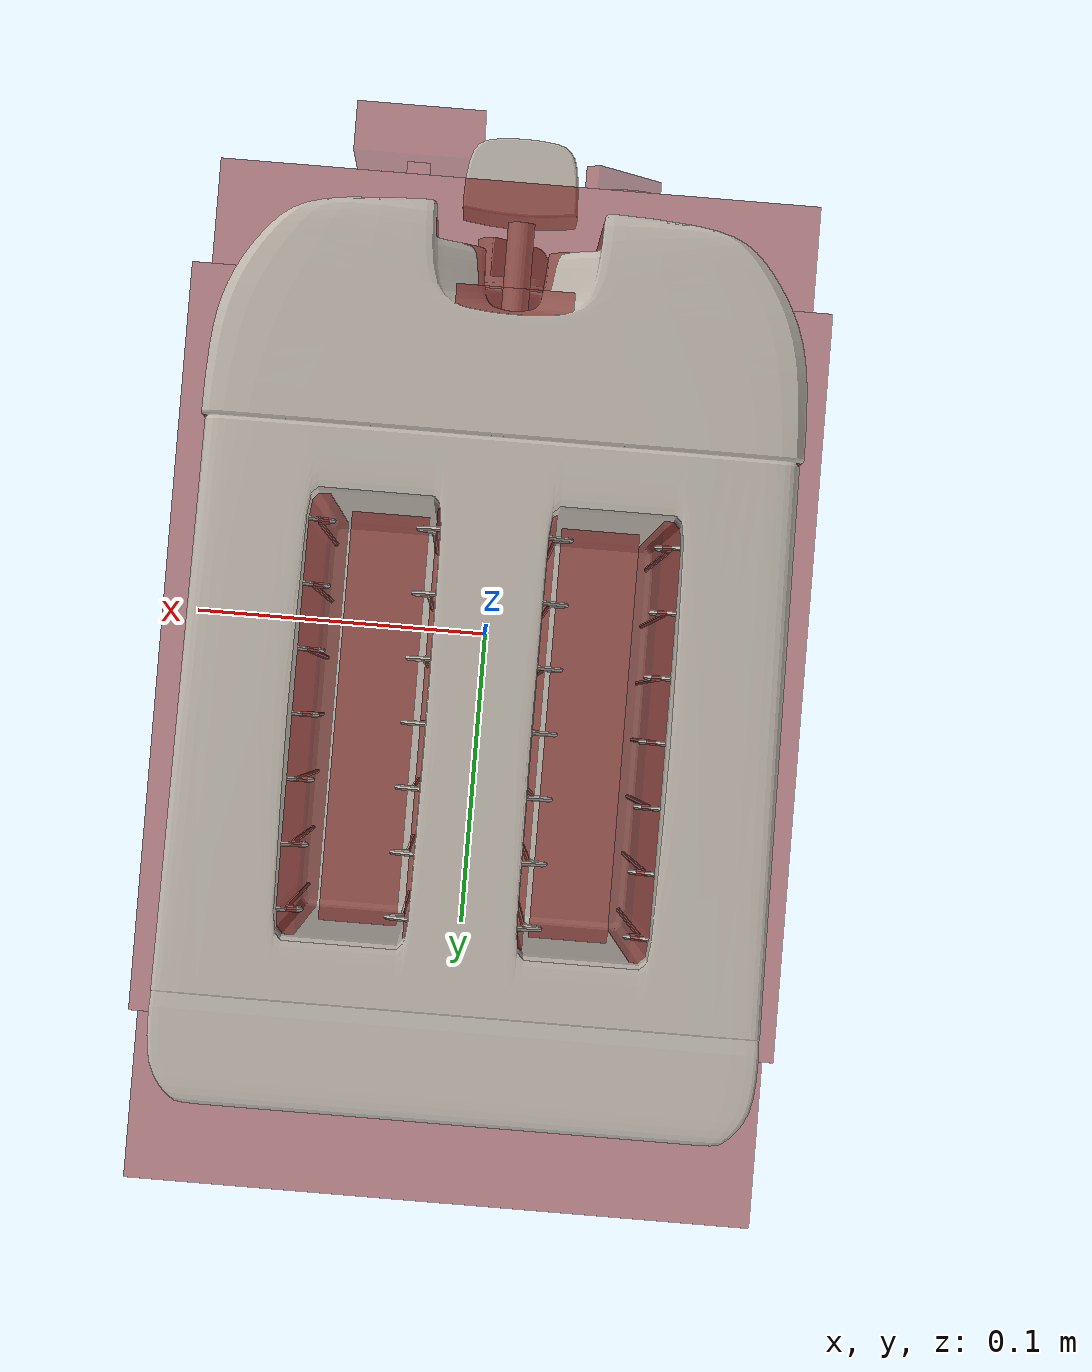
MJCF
<?xml version='1.0' encoding='UTF-8'?>
<mujoco model="model">
  <option timestep="0.002" gravity="0.0 0.0 -9.81"/>
  <compiler angle="radian"/>
  <asset>
    <mesh file="visuals/button_cancel.obj" name="button_cancel_vis"/>
    <mesh file="visuals/knob_doneness.obj" name="knob_doneness_vis"/>
    <mesh file="visuals/lever.obj" name="lever_vis"/>
    <mesh file="visuals/Body001.obj" name="Body001_vis"/>
    <mesh file="visuals/Body002.obj" name="Body002_vis"/>
    <texture file="visuals/T_BC001.png" name="Body001_material" type="2d"/>
    <material name="Body001_material" rgba="1 1 1 1.0" texture="Body001_material" shininess="0.141421377658844" specular="0.5"/>
    <texture file="visuals/T_BC001.png" name="button_cancel_material" type="2d"/>
    <material name="button_cancel_material" rgba="1 1 1 1.0" texture="button_cancel_material" shininess="0.141421377658844" specular="0.3103448502657381"/>
    <texture file="visuals/T_BC001.png" name="knob_doneness_material" type="2d"/>
    <material name="knob_doneness_material" rgba="1 1 1 1.0" texture="knob_doneness_material" shininess="0.141421377658844" specular="0.3103448502657381"/>
    <texture file="visuals/T_BC001.png" name="lever_material" type="2d"/>
    <material name="lever_material" rgba="1 1 1 1.0" texture="lever_material" shininess="0.141421377658844" specular="0.3103448502657381"/>
    <texture file="visuals/T_BC001.png" name="Body002_material" type="2d"/>
    <material name="Body002_material" rgba="1 1 1 1.0" texture="Body002_material" shininess="0.141421377658844" specular="1"/>
  </asset>
  <default>
    <default class="visual">
      <geom conaffinity="0" contype="0" group="1" type="mesh"/>
    </default>
    <default class="collision_1">
      <geom group="0" rgba="0.5 0 0 0.5" solref="0.004 1" solimp="0.998 0.998 0.001"/>
    </default>
    <default class="collision_2">
      <geom group="0" rgba="0.5 0 0 0.5" solref="0.004 1" solimp="0.998 0.998 0.001"/>
    </default>
    <default class="collision_3">
      <geom group="0" rgba="0.5 0 0 0.5" solref="0.004 1" solimp="0.998 0.998 0.001"/>
    </default>
    <default class="collision_4">
      <geom group="0" rgba="0.5 0 0 0.5" solref="0.004 1" solimp="0.998 0.998 0.001"/>
    </default>
    <default class="collision_5">
      <geom group="0" rgba="0.5 0 0 0.5" solref="0.004 1" solimp="0.998 0.998 0.001"/>
    </default>
    <default class="spawn">
      <geom group="0" rgba="1 1 1 0.5" contype="0" conaffinity="0"/>
      <site group="0" rgba="1 1 1 0.5"/>
    </default>
    <default class="region">
      <geom group="1" conaffinity="0" contype="0" rgba="0 1 0 0" mass="0"/>
    </default>
  </default>
  <worldbody>
    <body>
      <body name="object">
        <geom mesh="Body001_vis" type="mesh" solimp="0.998 0.998 0.001" solref="0.001 1" friction="0.95 0.3 0.1" class="visual" material="Body001_material"/>
        <geom type="box" pos="-0.07488800585269928 0.011524900794029236 -0.005815255921334028" size="0.023146148771047592 0.11509587615728378 0.11965861916542053" quat="1.0 0.0 0.0 0.0" class="collision_1"/>
        <geom type="box" pos="0.07529187947511673 0.011524900794029236 -0.005815255921334028" size="0.024228282272815704 0.11509574949741364 0.11965849250555038" quat="1.0 0.0 0.0 0.0" class="collision_1"/>
        <geom type="box" pos="0.0010322683956474066 0.15098883211612701 -0.005815255921334028" size="0.0956549271941185 0.02635013684630394 0.11965836584568024" quat="1.0 0.0 0.0 0.0" class="collision_1"/>
        <geom type="box" pos="0.0007400063914246857 -0.11958521604537964 -0.011359469033777714" size="0.09385614842176437 0.01879402995109558 0.11411401629447937" quat="1.0 0.0 0.0 0.0" class="collision_1"/>
        <geom type="box" pos="0.0010322683956474066 0.015418075025081635 -0.07468372583389282" size="0.0956549271941185 0.1551324874162674 0.05078919604420662" quat="1.0 0.0 0.0 0.0" class="collision_1"/>
        <geom type="box" pos="-0.00039106234908103943 0.011524900794029236 -0.005815255921334028" size="0.018305618315935135 0.11509524285793304 0.1196579784154892" quat="1.0 0.0 0.0 0.0" class="collision_1"/>
        <geom type="box" pos="0.0010322683956474066 -0.14465896785259247 -0.09889950603246689" size="0.0956549271941185 0.007975291460752487 0.026573054492473602" quat="1.0 0.0 0.0 0.0" class="collision_1"/>
        <body name="button_cancel">
          <joint axis="0.0 0.9951477646827698 -0.09839220345020294" pos="-0.036711499094963074 -0.14928001165390015 0.026580773293972015" limited="true" name="button_cancel_joint" range="0.0 0.003" type="slide" damping="1" frictionloss="1" armature=".01" stiffness="4" springref="-1"/>
          <geom mesh="button_cancel_vis" type="mesh" solimp="0.998 0.998 0.001" solref="0.001 1" friction="0.95 0.3 0.1" class="visual" material="button_cancel_material"/>
          <geom class="collision_2" type="cylinder" pos="-0.036685675382614136 -0.15081441402435303 0.026710618287324905" size="0.008471447043120861 0.0020481699611991644" quat="0.7366375923156738 0.6762877106666565 0.0 0.0" name="button_cancel_main"/>
        </body>
        <body name="knob_doneness">
          <joint axis="0.0 1.0 0.0" pos="-0.03651811555027962 -0.15102431178092957 -0.023310568183660507" limited="true" name="knob_doneness_joint" range="0.0 4.71238898038469" type="hinge" damping="0.05" frictionloss="0.75" armature="1"/>
          <geom mesh="knob_doneness_vis" type="mesh" solimp="0.998 0.998 0.001" solref="0.001 1" friction="0.95 0.3 0.1" class="visual" material="knob_doneness_material"/>
          <geom type="cylinder" pos="-0.03673221543431282 -0.15320010483264923 -0.023907829076051712" size="0.018186276778578758 0.0028125473763793707" quat="0.7071068286895752 0.7071067690849304 0.0 0.0" class="collision_3" friction="100 0.5 0.01"/>
          <geom class="collision_3" type="box" pos="-0.03650251403450966 -0.16254673898220062 -0.02354789897799492" size="0.015994589775800705 0.006491436157375574 0.0031952860299497843" quat="0.9304175972938538 0.0 -0.36650121212005615 0.0" name="knob_doneness_main" friction="100 0.5 0.01"/>
        </body>
        <body name="lever">
          <joint axis="0.0 0.0 -1.0" pos="0.03511293604969978 -0.15722987055778503 0.03736644238233566" limited="true" name="lever_joint" range="0.0 0.06" type="slide" damping="1" frictionloss="1" armature=".1" stiffness="3.4" springref="-0.5"/>
          <geom class="region" name="reg_slotR" type="box" pos="0.034988900646567345 0.012009669095277786 0.12483536452054977" size="0.014185659423470498 0.10737042298913002 0.07599996572732926"/>
          <geom class="region" name="reg_slotL" type="box" pos="-0.034976364113390446 0.012009669095277786 0.12483536452054977" size="0.015136879704892636 0.10737042298913002 0.07599996572732926"/>
          <geom mesh="lever_vis" type="mesh" solimp="0.998 0.998 0.001" solref="0.001 1" friction="0.95 0.3 0.1" class="visual" material="lever_material"/>
          <geom class="collision_4" type="box" pos="0.03525107353925705 -0.16262122988700867 0.03736644238233566" size="0.021307790651917458 0.008166993968188763 0.016228368505835533" quat="1.0 0.0 0.0 0.0" name="lever_handle"/>
          <geom type="box" pos="0.03509388118982315 -0.14723186194896698 0.03736097365617752" size="0.003809619229286909 0.007375452201813459 0.0037703749258071184" quat="1.0 0.0 0.0 0.0" class="collision_4"/>
          <geom class="collision_4" type="box" pos="0.03436634689569473 0.012849060818552971 0.0456073097884655" size="0.012864400632679462 0.09912717342376709 0.0016128503484651446" quat="1.0 0.0 0.0 0.0" name="slotR_floor"/>
          <geom class="collision_4" type="box" pos="-0.03533738851547241 0.012849060818552971 0.0456073097884655" size="0.012864410877227783 0.09912717342376709 0.0016128479037433863" quat="1.0 0.0 0.0 0.0" name="slotL_floor"/>
        </body>
        <body name="Body002">
          <geom mesh="Body002_vis" type="mesh" solimp="0.998 0.998 0.001" solref="0.001 1" friction="0.95 0.3 0.1" class="visual" material="Body002_material"/>
        </body>
        <geom class="region" name="reg_main" type="box" pos="0.0 0.012651197612285614 0.0" size="0.09902284836769104 0.16438413953781128 0.12620788609981537"/>
      </body>
    </body>
  </worldbody>
  <actuator>
    <motor name="button_cancel_joint_actuator" joint="button_cancel_joint" gear="0.3"/>
    <motor name="knob_doneness_joint_actuator" joint="knob_doneness_joint" gear="5"/>
    <motor name="lever_joint_actuator" joint="lever_joint" gear="2"/>
  </actuator>
</mujoco>
